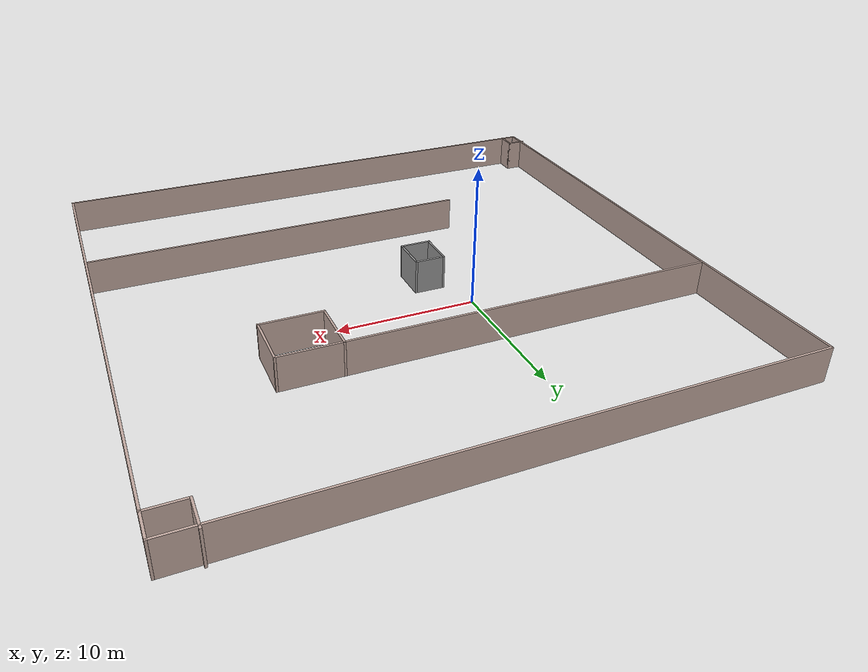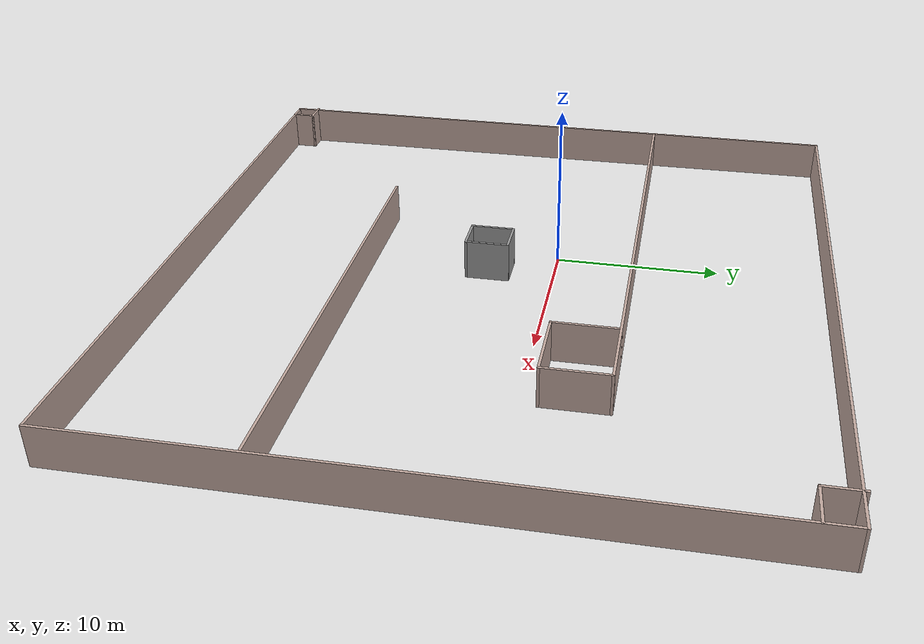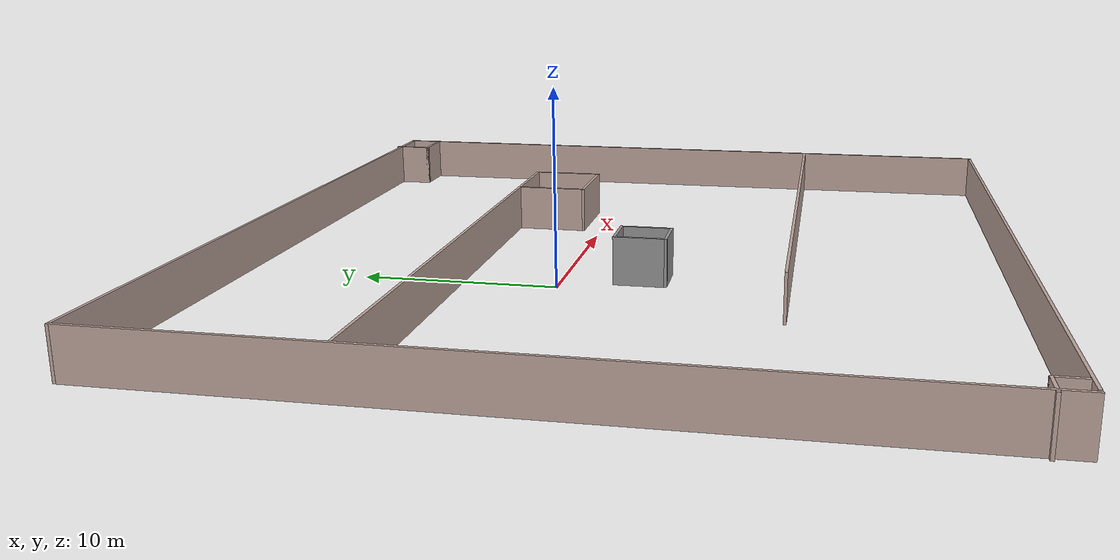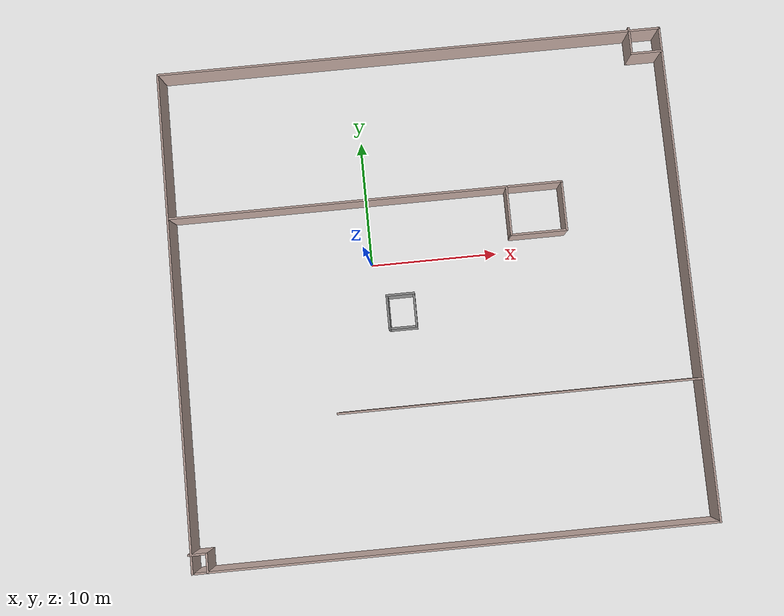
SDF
<?xml version='1.0'?>
<sdf version='1.7'>
  <model name='Map3'>
    <pose>4.4782 -2.78831 0 0 -0 0</pose>
    <link name='Wall_1'>
      <collision name='Wall_1_Collision'>
        <geometry>
          <box>
            <size>40 0.15 2.5</size>
          </box>
        </geometry>
        <pose>0 0 1.25 0 -0 0</pose>
      </collision>
      <visual name='Wall_1_Visual'>
        <pose>0 0 1.25 0 -0 0</pose>
        <geometry>
          <box>
            <size>40 0.15 2.5</size>
          </box>
        </geometry>
        <material>
          <script>
            <uri>file://media/materials/scripts/gazebo.material</uri>
            <name>Gazebo/Grey</name>
          </script>
          <ambient>0.760784 0.662745 0.627451 1</ambient>
        </material>
        <meta>
          <layer>0</layer>
        </meta>
      </visual>
      <pose>0.215224 -19.5317 0 0 -0 0</pose>
    </link>
    <link name='Wall_11'>
      <collision name='Wall_11_Collision'>
        <geometry>
          <box>
            <size>28.25 0.15 2.5</size>
          </box>
        </geometry>
        <pose>0 0 1.25 0 -0 0</pose>
      </collision>
      <visual name='Wall_11_Visual'>
        <pose>0 0 1.25 0 -0 0</pose>
        <geometry>
          <box>
            <size>28.25 0.15 2.5</size>
          </box>
        </geometry>
        <material>
          <script>
            <uri>file://media/materials/scripts/gazebo.material</uri>
            <name>Gazebo/Grey</name>
          </script>
          <ambient>0.760784 0.662745 0.627451 1</ambient>
        </material>
        <meta>
          <layer>0</layer>
        </meta>
      </visual>
      <pose>6.0569 -8.66282 0 0 -0 3.14159</pose>
    </link>
    <link name='Wall_13'>
      <collision name='Wall_13_Collision'>
        <geometry>
          <box>
            <size>2.25 0.15 2.5</size>
          </box>
        </geometry>
        <pose>0 0 1.25 0 -0 0</pose>
      </collision>
      <visual name='Wall_13_Visual'>
        <pose>0 0 1.25 0 -0 0</pose>
        <geometry>
          <box>
            <size>2.25 0.15 2.5</size>
          </box>
        </geometry>
        <material>
          <script>
            <uri>file://media/materials/scripts/gazebo.material</uri>
            <name>Gazebo/Grey</name>
          </script>
          <ambient>0.760784 0.662745 0.627451 1</ambient>
        </material>
        <meta>
          <layer>0</layer>
        </meta>
      </visual>
      <pose>17.7394 18.4817 0 0 -0 -1.5708</pose>
    </link>
    <link name='Wall_14'>
      <collision name='Wall_14_Collision'>
        <geometry>
          <box>
            <size>2.5 0.15 2.5</size>
          </box>
        </geometry>
        <pose>0 0 1.25 0 -0 0</pose>
      </collision>
      <visual name='Wall_14_Visual'>
        <pose>0 0 1.25 0 -0 0</pose>
        <geometry>
          <box>
            <size>2.5 0.15 2.5</size>
          </box>
        </geometry>
        <material>
          <script>
            <uri>file://media/materials/scripts/gazebo.material</uri>
            <name>Gazebo/Grey</name>
          </script>
          <ambient>0.760784 0.662745 0.627451 1</ambient>
        </material>
        <meta>
          <layer>0</layer>
        </meta>
      </visual>
      <pose>18.9144 17.4317 0 0 -0 0</pose>
    </link>
    <link name='Wall_16'>
      <collision name='Wall_16_Collision'>
        <geometry>
          <box>
            <size>1.5 0.15 2.5</size>
          </box>
        </geometry>
        <pose>0 0 1.25 0 -0 0</pose>
      </collision>
      <visual name='Wall_16_Visual'>
        <pose>0 0 1.25 0 -0 0</pose>
        <geometry>
          <box>
            <size>1.5 0.15 2.5</size>
          </box>
        </geometry>
        <material>
          <script>
            <uri>file://media/materials/scripts/gazebo.material</uri>
            <name>Gazebo/Grey</name>
          </script>
          <ambient>0.760784 0.662745 0.627451 1</ambient>
        </material>
        <meta>
          <layer>0</layer>
        </meta>
      </visual>
      <pose>-19.4652 -18.1327 0 0 -0 0</pose>
    </link>
    <link name='Wall_17'>
      <collision name='Wall_17_Collision'>
        <geometry>
          <box>
            <size>1.5 0.15 2.5</size>
          </box>
        </geometry>
        <pose>0 0 1.25 0 -0 0</pose>
      </collision>
      <visual name='Wall_17_Visual'>
        <pose>0 0 1.25 0 -0 0</pose>
        <geometry>
          <box>
            <size>1.5 0.15 2.5</size>
          </box>
        </geometry>
        <material>
          <script>
            <uri>file://media/materials/scripts/gazebo.material</uri>
            <name>Gazebo/Grey</name>
          </script>
          <ambient>0.760784 0.662745 0.627451 1</ambient>
        </material>
        <meta>
          <layer>0</layer>
        </meta>
      </visual>
      <pose>-18.7902 -18.8077 0 0 -0 -1.5708</pose>
    </link>
    <link name='Wall_19'>
      <collision name='Wall_19_Collision'>
        <geometry>
          <box>
            <size>2.25 0.15 2.5</size>
          </box>
        </geometry>
        <pose>0 0 1.25 0 -0 0</pose>
      </collision>
      <visual name='Wall_19_Visual'>
        <pose>0 0 1.25 0 -0 0</pose>
        <geometry>
          <box>
            <size>2.25 0.15 2.5</size>
          </box>
        </geometry>
        <material>
          <script>
            <uri>file://media/materials/scripts/gazebo.material</uri>
            <name>Gazebo/Grey</name>
          </script>
          <ambient>1 1 1 1</ambient>
        </material>
        <meta>
          <layer>0</layer>
        </meta>
      </visual>
      <pose>-2.41027 0.053807 0 0 -0 0</pose>
    </link>
    <link name='Wall_2'>
      <collision name='Wall_2_Collision'>
        <geometry>
          <box>
            <size>39 0.15 2.5</size>
          </box>
        </geometry>
        <pose>0 0 1.25 0 -0 0</pose>
      </collision>
      <visual name='Wall_2_Visual'>
        <pose>0 0 1.25 0 -0 0</pose>
        <geometry>
          <box>
            <size>39 0.15 2.5</size>
          </box>
        </geometry>
        <material>
          <script>
            <uri>file://media/materials/scripts/gazebo.material</uri>
            <name>Gazebo/Grey</name>
          </script>
          <ambient>0.760784 0.662745 0.627451 1</ambient>
        </material>
        <meta>
          <layer>0</layer>
        </meta>
      </visual>
      <pose>20.1402 -0.106693 0 0 -0 1.5708</pose>
    </link>
    <link name='Wall_20'>
      <collision name='Wall_20_Collision'>
        <geometry>
          <box>
            <size>2.75 0.15 2.5</size>
          </box>
        </geometry>
        <pose>0 0 1.25 0 -0 0</pose>
      </collision>
      <visual name='Wall_20_Visual'>
        <pose>0 0 1.25 0 -0 0</pose>
        <geometry>
          <box>
            <size>2.75 0.15 2.5</size>
          </box>
        </geometry>
        <material>
          <script>
            <uri>file://media/materials/scripts/gazebo.material</uri>
            <name>Gazebo/Grey</name>
          </script>
          <ambient>1 1 1 1</ambient>
        </material>
        <meta>
          <layer>0</layer>
        </meta>
      </visual>
      <pose>-1.36027 -1.24619 0 0 -0 -1.5708</pose>
    </link>
    <link name='Wall_21'>
      <collision name='Wall_21_Collision'>
        <geometry>
          <box>
            <size>2.25 0.15 2.5</size>
          </box>
        </geometry>
        <pose>0 0 1.25 0 -0 0</pose>
      </collision>
      <visual name='Wall_21_Visual'>
        <pose>0 0 1.25 0 -0 0</pose>
        <geometry>
          <box>
            <size>2.25 0.15 2.5</size>
          </box>
        </geometry>
        <material>
          <script>
            <uri>file://media/materials/scripts/gazebo.material</uri>
            <name>Gazebo/Grey</name>
          </script>
          <ambient>1 1 1 1</ambient>
        </material>
        <meta>
          <layer>0</layer>
        </meta>
      </visual>
      <pose>-2.41027 -2.54619 0 0 -0 3.14159</pose>
    </link>
    <link name='Wall_22'>
      <collision name='Wall_22_Collision'>
        <geometry>
          <box>
            <size>2.75 0.15 2.5</size>
          </box>
        </geometry>
        <pose>0 0 1.25 0 -0 0</pose>
      </collision>
      <visual name='Wall_22_Visual'>
        <pose>0 0 1.25 0 -0 0</pose>
        <geometry>
          <box>
            <size>2.75 0.15 2.5</size>
          </box>
        </geometry>
        <material>
          <script>
            <uri>file://media/materials/scripts/gazebo.material</uri>
            <name>Gazebo/Grey</name>
          </script>
          <ambient>1 1 1 1</ambient>
        </material>
        <meta>
          <layer>0</layer>
        </meta>
      </visual>
      <pose>-3.46027 -1.24619 0 0 -0 1.5708</pose>
    </link>
    <link name='Wall_3'>
      <collision name='Wall_3_Collision'>
        <geometry>
          <box>
            <size>40.25 0.15 2.5</size>
          </box>
        </geometry>
        <pose>0 0 1.25 0 -0 0</pose>
      </collision>
      <visual name='Wall_3_Visual'>
        <pose>0 0 1.25 0 -0 0</pose>
        <geometry>
          <box>
            <size>40.25 0.15 2.5</size>
          </box>
        </geometry>
        <material>
          <script>
            <uri>file://media/materials/scripts/gazebo.material</uri>
            <name>Gazebo/Grey</name>
          </script>
          <ambient>0.760784 0.662745 0.627451 1</ambient>
        </material>
        <meta>
          <layer>0</layer>
        </meta>
      </visual>
      <pose>0.090224 19.3183 0 0 -0 3.14159</pose>
    </link>
    <link name='Wall_4'>
      <collision name='Wall_4_Collision'>
        <geometry>
          <box>
            <size>39 0.15 2.5</size>
          </box>
        </geometry>
        <pose>0 0 1.25 0 -0 0</pose>
      </collision>
      <visual name='Wall_4_Visual'>
        <pose>0 0 1.25 0 -0 0</pose>
        <geometry>
          <box>
            <size>39 0.15 2.5</size>
          </box>
        </geometry>
        <material>
          <script>
            <uri>file://media/materials/scripts/gazebo.material</uri>
            <name>Gazebo/Grey</name>
          </script>
          <ambient>0.760784 0.662745 0.627451 1</ambient>
        </material>
        <meta>
          <layer>0</layer>
        </meta>
      </visual>
      <pose>-19.9598 -0.106693 0 0 -0 -1.5708</pose>
    </link>
    <link name='Wall_6'>
      <collision name='Wall_6_Collision'>
        <geometry>
          <box>
            <size>31 0.15 2.5</size>
          </box>
        </geometry>
        <pose>0 0 1.25 0 -0 0</pose>
      </collision>
      <visual name='Wall_6_Visual'>
        <pose>0 0 1.25 0 -0 0</pose>
        <geometry>
          <box>
            <size>31 0.15 2.5</size>
          </box>
        </geometry>
        <material>
          <script>
            <uri>file://media/materials/scripts/gazebo.material</uri>
            <name>Gazebo/Grey</name>
          </script>
          <ambient>0.760784 0.662745 0.627451 1</ambient>
        </material>
        <meta>
          <layer>0</layer>
        </meta>
      </visual>
      <pose>-4.39239 7.6943 0 0 -0 0</pose>
    </link>
    <link name='Wall_7'>
      <collision name='Wall_7_Collision'>
        <geometry>
          <box>
            <size>4 0.15 2.5</size>
          </box>
        </geometry>
        <pose>0 0 1.25 0 -0 0</pose>
      </collision>
      <visual name='Wall_7_Visual'>
        <pose>0 0 1.25 0 -0 0</pose>
        <geometry>
          <box>
            <size>4 0.15 2.5</size>
          </box>
        </geometry>
        <material>
          <script>
            <uri>file://media/materials/scripts/gazebo.material</uri>
            <name>Gazebo/Grey</name>
          </script>
          <ambient>0.760784 0.662745 0.627451 1</ambient>
        </material>
        <meta>
          <layer>0</layer>
        </meta>
      </visual>
      <pose>11.0326 5.76931 0 0 -0 -1.5708</pose>
    </link>
    <link name='Wall_8'>
      <collision name='Wall_8_Collision'>
        <geometry>
          <box>
            <size>4.5 0.15 2.5</size>
          </box>
        </geometry>
        <pose>0 0 1.25 0 -0 0</pose>
      </collision>
      <visual name='Wall_8_Visual'>
        <pose>0 0 1.25 0 -0 0</pose>
        <geometry>
          <box>
            <size>4.5 0.15 2.5</size>
          </box>
        </geometry>
        <material>
          <script>
            <uri>file://media/materials/scripts/gazebo.material</uri>
            <name>Gazebo/Grey</name>
          </script>
          <ambient>0.760784 0.662745 0.627451 1</ambient>
        </material>
        <meta>
          <layer>0</layer>
        </meta>
      </visual>
      <pose>8.85761 3.8443 0 0 -0 3.14159</pose>
    </link>
    <link name='Wall_9'>
      <collision name='Wall_9_Collision'>
        <geometry>
          <box>
            <size>4 0.15 2.5</size>
          </box>
        </geometry>
        <pose>0 0 1.25 0 -0 0</pose>
      </collision>
      <visual name='Wall_9_Visual'>
        <pose>0 0 1.25 0 -0 0</pose>
        <geometry>
          <box>
            <size>4 0.15 2.5</size>
          </box>
        </geometry>
        <material>
          <script>
            <uri>file://media/materials/scripts/gazebo.material</uri>
            <name>Gazebo/Grey</name>
          </script>
          <ambient>0.760784 0.662745 0.627451 1</ambient>
        </material>
        <meta>
          <layer>0</layer>
        </meta>
      </visual>
      <pose>6.68261 5.76931 0 0 -0 1.5708</pose>
    </link>
    <static>1</static>
  </model>
</sdf>
